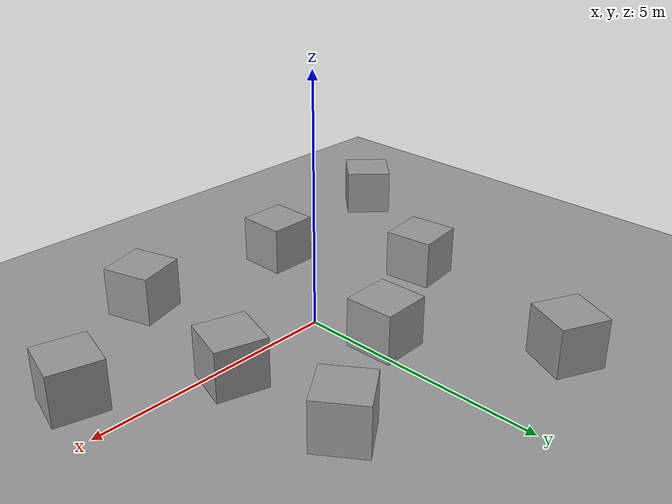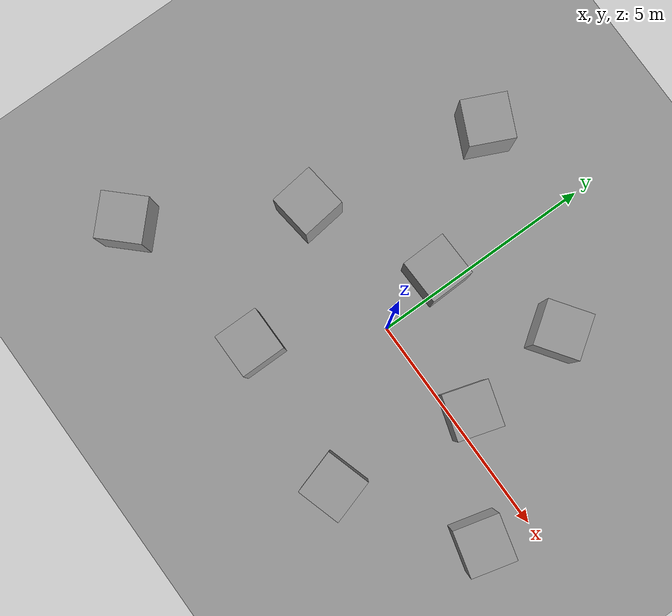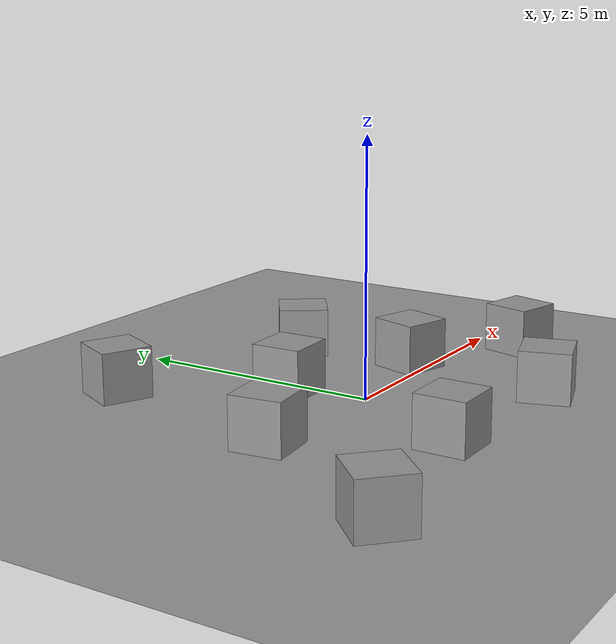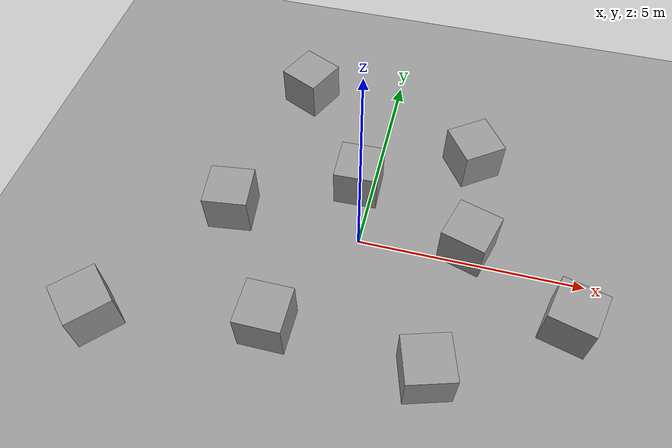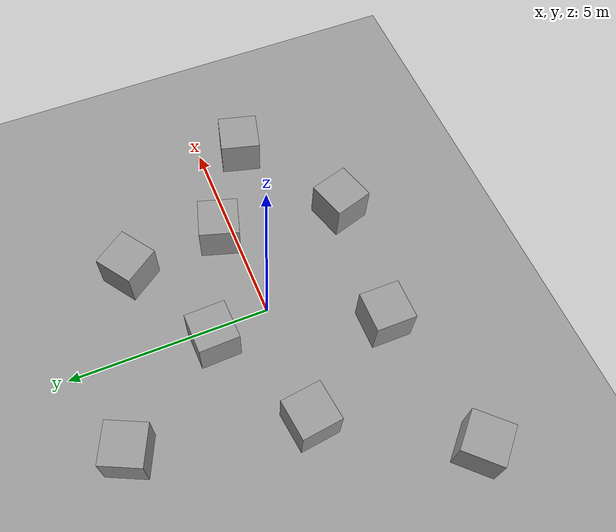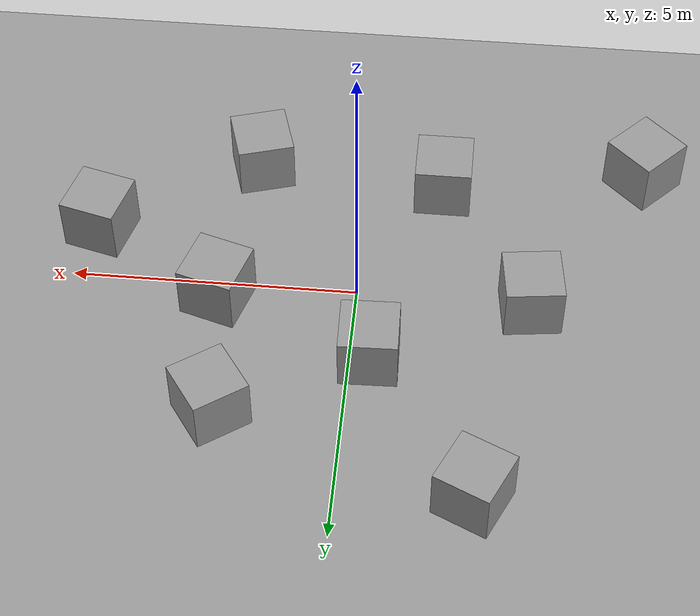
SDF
<sdf version="1.4">
 <world name="default">
  <light name="sun" type="directional">
   <pose>0 0 10 0 -0 0</pose>
   <diffuse>0.8 0.8 0.8 1</diffuse>
   <specular>0.2 0.2 0.2 1</specular>
   <attenuation>
    <range>1000</range>
    <constant>0.9</constant>
    <linear>0.01</linear>
    <quadratic>0.001</quadratic>
   </attenuation>
   <direction>0.5 0.1 -0.9</direction>
  </light>
  <scene><ambient>0.4 0.4 0.4 1</ambient><background>0.7 0.7 0.7 1</background><shadows>1</shadows></scene>
  <physics type="ode">
   <max_step_size>0.01</max_step_size>
   <real_time_factor>1</real_time_factor>
   <real_time_update_rate>100</real_time_update_rate>
   <gravity>0 0 -9.8</gravity>
  </physics>
  <model name="ground_plane_0">
   <static>1</static>
   <link name="link">
    <collision name="collision">
     <geometry><plane><normal>0 0 1</normal><size>30 30</size></plane></geometry>
     <surface><friction><ode><mu>100</mu><mu2>50</mu2></ode></friction></surface>
    </collision>
    <visual name="visual">
     <cast_shadows>0</cast_shadows>
     <geometry><plane><normal>0 0 1</normal><size>30 30</size></plane></geometry>
     <material>
      <script><uri>file://media/materials/scripts/gazebo.material</uri><name>Gazebo/Grey</name></script>
     </material>
    </visual>
    <velocity_decay><linear>0</linear><angular>0</angular></velocity_decay>
   </link>
  </model>
  <spherical_coordinates>
   <surface_model>EARTH_WGS84</surface_model>
   <latitude_deg>0</latitude_deg>
   <longitude_deg>0</longitude_deg>
   <elevation>0</elevation>
   <heading_deg>0</heading_deg>
  </spherical_coordinates>
  <model name="box_1">
   <pose>4.67115 -1.04116 0.5 -0 -0 -0.255975</pose>
   <link name="link">
    <inertial>
     <mass>1</mass>
     <inertia><ixx>1</ixx><ixy>0</ixy><ixz>0</ixz><iyy>1</iyy><iyz>0</iyz><izz>1</izz></inertia>
    </inertial>
    <collision name="collision"><geometry><box><size>1 1 1</size></box></geometry></collision>
    <visual name="visual">
     <geometry><box><size>1 1 1</size></box></geometry>
     <material>
      <script><uri>file://media/materials/scripts/gazebo.material</uri><name>Gazebo/Grey</name></script>
     </material>
    </visual>
    <velocity_decay><linear>0</linear><angular>0</angular></velocity_decay>
   </link>
   <static>0</static>
  </model>
  <model name="box_2">
   <pose>2.15549 2.80559 0.5 0 -0 0.610851</pose>
   <link name="link">
    <inertial>
     <mass>1</mass>
     <inertia><ixx>1</ixx><ixy>0</ixy><ixz>0</ixz><iyy>1</iyy><iyz>0</iyz><izz>1</izz></inertia>
    </inertial>
    <collision name="collision"><geometry><box><size>1 1 1</size></box></geometry></collision>
    <visual name="visual">
     <geometry><box><size>1 1 1</size></box></geometry>
     <material>
      <script><uri>file://media/materials/scripts/gazebo.material</uri><name>Gazebo/Grey</name></script>
     </material>
    </visual>
    <velocity_decay><linear>0</linear><angular>0</angular></velocity_decay>
   </link>
   <static>0</static>
  </model>
  <model name="box_5">
   <pose>-4.9668 -3.12479 0.5 -0 -0 -2.33322</pose>
   <link name="link">
    <inertial>
     <mass>1</mass>
     <inertia><ixx>1</ixx><ixy>0</ixy><ixz>0</ixz><iyy>1</iyy><iyz>0</iyz><izz>1</izz></inertia>
    </inertial>
    <collision name="collision"><geometry><box><size>1 1 1</size></box></geometry></collision>
    <visual name="visual">
     <geometry><box><size>1 1 1</size></box></geometry>
     <material>
      <script><uri>file://media/materials/scripts/gazebo.material</uri><name>Gazebo/Grey</name></script>
     </material>
    </visual>
    <velocity_decay><linear>0</linear><angular>0</angular></velocity_decay>
   </link>
   <static>0</static>
  </model>
  <model name="box_3">
   <pose>1.9806 -2.80153 0.5 0 -0 0.292811</pose>
   <link name="link">
    <inertial>
     <mass>1</mass>
     <inertia><ixx>1</ixx><ixy>0</ixy><ixz>0</ixz><iyy>1</iyy><iyz>0</iyz><izz>1</izz></inertia>
    </inertial>
    <collision name="collision"><geometry><box><size>1 1 1</size></box></geometry></collision>
    <visual name="visual">
     <geometry><box><size>1 1 1</size></box></geometry>
     <material>
      <script><uri>file://media/materials/scripts/gazebo.material</uri><name>Gazebo/Grey</name></script>
     </material>
    </visual>
    <velocity_decay><linear>0</linear><angular>0</angular></velocity_decay>
   </link>
   <static>0</static>
  </model>
  <model name="box_4">
   <pose>-2.22994 4.15783 0.5 0 -0 -0.43481</pose>
   <link name="link">
    <inertial>
     <mass>1</mass>
     <inertia><ixx>1</ixx><ixy>0</ixy><ixz>0</ixz><iyy>1</iyy><iyz>0</iyz><izz>1</izz></inertia>
    </inertial>
    <collision name="collision"><geometry><box><size>1 1 1</size></box></geometry></collision>
    <visual name="visual">
     <geometry><box><size>1 1 1</size></box></geometry>
     <material>
      <script><uri>file://media/materials/scripts/gazebo.material</uri><name>Gazebo/Grey</name></script>
     </material>
    </visual>
    <velocity_decay><linear>0</linear><angular>0</angular></velocity_decay>
   </link>
   <static>0</static>
  </model>
  <model name="box_6">
   <pose>-0.344457 1.49069 0.5 0 -0 0.028092</pose>
   <link name="link">
    <inertial>
     <mass>1</mass>
     <inertia><ixx>1</ixx><ixy>0</ixy><ixz>0</ixz><iyy>1</iyy><iyz>0</iyz><izz>1</izz></inertia>
    </inertial>
    <collision name="collision"><geometry><box><size>1 1 1</size></box></geometry></collision>
    <visual name="visual">
     <geometry><box><size>1 1 1</size></box></geometry>
     <material>
      <script><uri>file://media/materials/scripts/gazebo.material</uri><name>Gazebo/Grey</name></script>
     </material>
    </visual>
    <velocity_decay><linear>0</linear><angular>0</angular></velocity_decay>
   </link>
   <static>0</static>
  </model>
  <model name="box_7">
   <pose>-3.01518 0.144004 0.5 0 -0 0.121846</pose>
   <link name="link">
    <inertial>
     <mass>1</mass>
     <inertia><ixx>1</ixx><ixy>0</ixy><ixz>0</ixz><iyy>1</iyy><iyz>0</iyz><izz>1</izz></inertia>
    </inertial>
    <collision name="collision"><geometry><box><size>1 1 1</size></box></geometry></collision>
    <visual name="visual">
     <geometry><box><size>1 1 1</size></box></geometry>
     <material>
      <script><uri>file://media/materials/scripts/gazebo.material</uri><name>Gazebo/Grey</name></script>
     </material>
    </visual>
    <velocity_decay><linear>0</linear><angular>0</angular></velocity_decay>
   </link>
   <static>0</static>
  </model>
  <model name="box_8">
   <pose>-1.35508 -2.48937 0.5 0 -0 0</pose>
   <link name="link">
    <inertial>
     <mass>1</mass>
     <inertia><ixx>1</ixx><ixy>0</ixy><ixz>0</ixz><iyy>1</iyy><iyz>0</iyz><izz>1</izz></inertia>
    </inertial>
    <collision name="collision"><geometry><box><size>1 1 1</size></box></geometry></collision>
    <visual name="visual">
     <geometry><box><size>1 1 1</size></box></geometry>
     <material>
      <script><uri>file://media/materials/scripts/gazebo.material</uri><name>Gazebo/Grey</name></script>
     </material>
    </visual>
    <velocity_decay><linear>0</linear><angular>0</angular></velocity_decay>
   </link>
   <static>0</static>
  </model>
  <model name="box_9">
   <pose>2.38537 0.353308 0.5 0 0 -0.294744</pose>
   <link name="link">
    <inertial>
     <mass>1</mass>
     <inertia><ixx>1</ixx><ixy>0</ixy><ixz>0</ixz><iyy>1</iyy><iyz>0</iyz><izz>1</izz></inertia>
    </inertial>
    <collision name="collision"><geometry><box><size>1 1 1</size></box></geometry></collision>
    <visual name="visual">
     <geometry><box><size>1 1 1</size></box></geometry>
     <material>
      <script><uri>file://media/materials/scripts/gazebo.material</uri><name>Gazebo/Grey</name></script>
     </material>
    </visual>
    <velocity_decay><linear>0</linear><angular>0</angular></velocity_decay>
   </link>
   <static>0</static>
  </model>
 </world>
</sdf>
